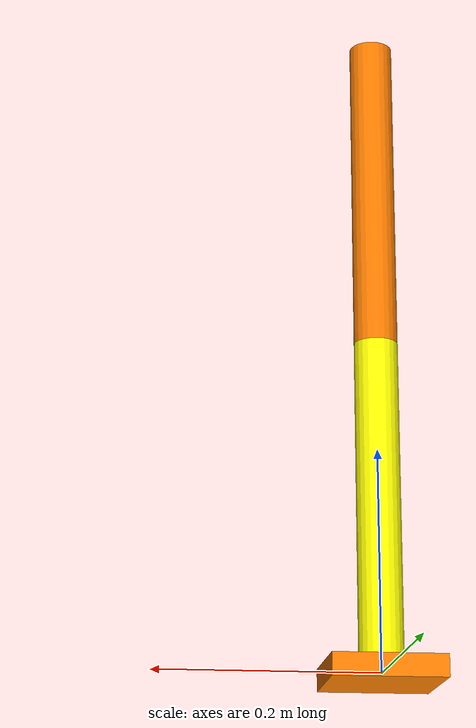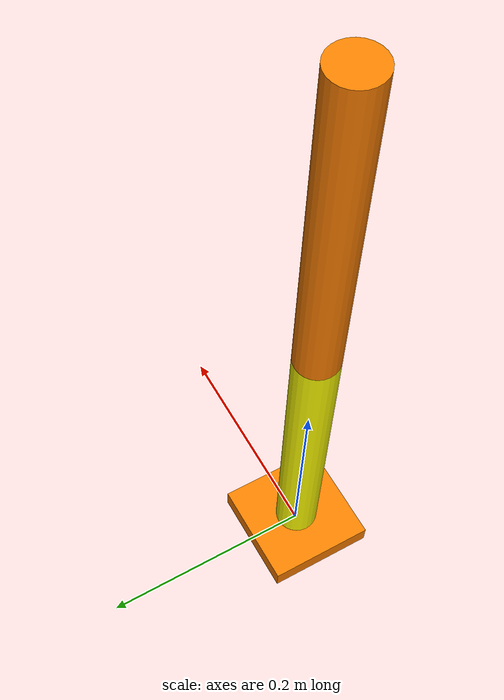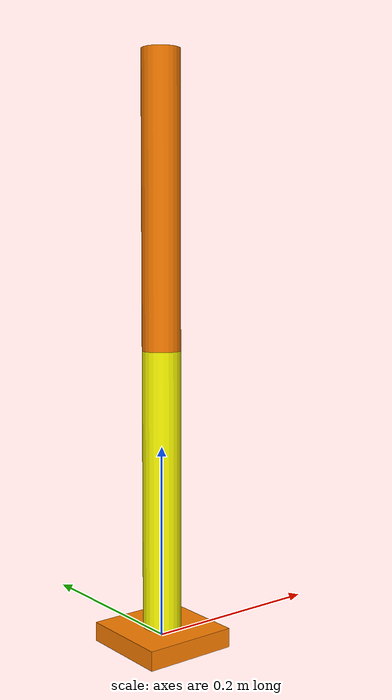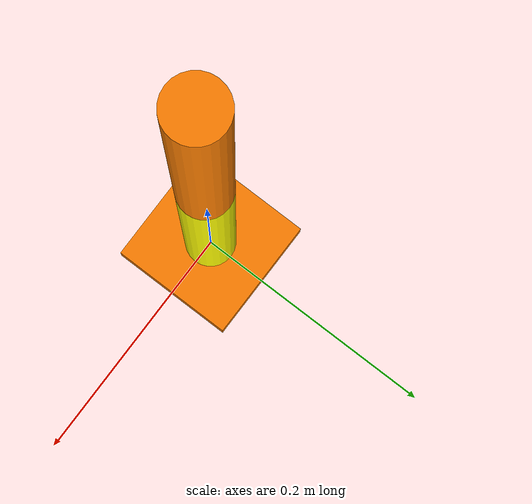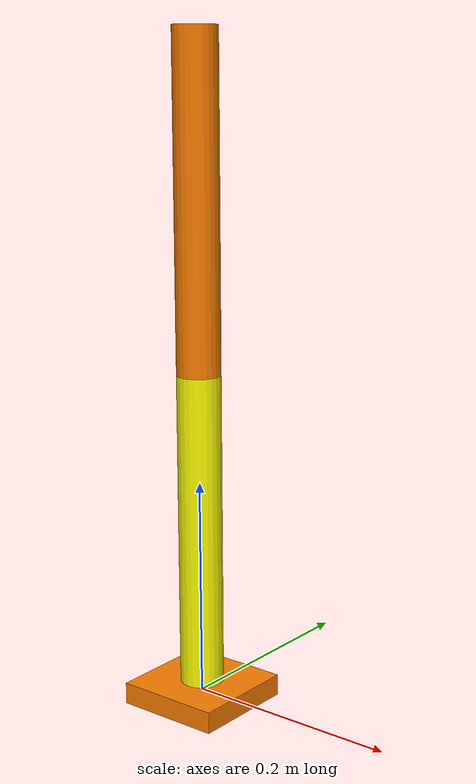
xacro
<?xml version="1.0"?>
<robot name="standalone_arm" xmlns:xacro="http://www.ros.org/wiki/xacro">

  <!-- Optional: shared materials + inertia helper macros -->
  <xacro:include filename="common_properties.xacro"/>

  <!-- The arm component -->
  <xacro:include filename="_arm_my_attempt.xacro"/>

  <!-- Root frame for standalone testing -->
  <link name="base_link"/>

  <!-- Instantiate the arm attached to base_link -->
  <xacro:arm parent_link="base_link" mount_xyz="0 0 0" mount_rpy="0 0 0"/>

</robot>

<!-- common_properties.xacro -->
<robot xmlns:xacro="http://www.ros.org/wiki/xacro">

    <material name="blue">
        <color rgba="0 0 0.5 1" />
    </material>

    <material name="grey">
        <color rgba="0.5 0.5 0.5 1" />
    </material>

    <material name="orange">
        <color rgba="1.0 0.5 0.0 1.0"/>
    </material>

    <material name="yellow">
        <color rgba="1.0 1.0 0.0 1.0"/>
    </material>

    <xacro:macro name="box_inertia" params="m x y z o_xyz o_rpy">
        <inertial>
            <mass value="${m}" />
            <origin xyz="${o_xyz}" rpy="${o_rpy}" />
            <inertia ixx="${(m/12) * (y*y + z*z)}" ixy="0" ixz="0"
                     iyy="${(m/12) * (x*x + z*z)}" iyz="0"
                     izz="${(m/12) * (x*x + y*y)}" />
        </inertial>
    </xacro:macro>

    <xacro:macro name="cylinder_inertia" params="m r l o_xyz o_rpy">
        <inertial>
            <mass value="${m}" />
            <origin xyz="${o_xyz}" rpy="${o_rpy}" />
            <inertia ixx="${(m/12) * (3*r*r + l*l)}" ixy="0" ixz="0"
                     iyy="${(m/12) * (3*r*r + l*l)}" iyz="0"
                     izz="${(m/2) * (r*r)}" />
        </inertial>
    </xacro:macro>

    <xacro:macro name="sphere_inertia" params="m r o_xyz o_rpy">
        <inertial>
            <mass value="${m}" />
            <origin xyz="${o_xyz}" rpy="${o_rpy}" />
            <inertia ixx="${(2/5) * m * r * r}" ixy="0" ixz="0"
                     iyy="${(2/5) * m * r * r}" iyz="0"
                     izz="${(2/5) * m * r * r}" />
        </inertial>
    </xacro:macro>

</robot>

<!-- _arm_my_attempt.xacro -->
<robot xmlns:xacro="http://www.ros.org/wiki/xacro">

    <xacro:macro name="arm" params="parent_link mount_xyz mount_rpy">

        <!-- Define links -->

        <link name="arm_base_link">
            <visual>
                <geometry>
                    <box size="0.1 0.1 0.02" />
                </geometry>
                <origin xyz="0 0 0" rpy="0 0 0" />
                <material name="orange" />
            </visual>
        </link>

        <link name="forearm_link">
            <visual>
                <geometry>
                    <cylinder radius="0.02" length="0.3" />
                </geometry>
                <origin xyz="0 0 0.15" rpy="0 0 0" />
                <material name="yellow" />
            </visual>
        </link>

        <link name="hand_link">
            <visual>
                <geometry>
                    <cylinder radius="0.02" length="0.3" />
                </geometry>
                <origin xyz="0 0 0.15" rpy="0 0 0" />
                <material name="orange" />
            </visual>
        </link>
        <!-- Define Joints -->

        <!-- Fix the arm to the root so TF exists even before /joint_states -->
        <joint name="base_to_arm" type="fixed">
            <parent link="base_link"/>
            <child link="arm_base_link"/>
            <origin xyz="0 0 0" rpy="0 0 0"/>
        </joint>

        <joint name="arm_forearm_joint" type="revolute">
            <parent link="arm_base_link" />
            <child link="forearm_link" />
            <origin xyz="0 0 0" />
            <axis xyz="0 1 0" />

        <limit lower="0.0" upper="${pi / 2.0}" effort="100" velocity="100"/>
        </joint>

        <joint name="forearm_hand_joint" type="revolute">
            <parent link="forearm_link" />
            <child link="hand_link" />
            <origin xyz="0 0 0.3" />
            <axis xyz="0 1 0" />

        <limit lower="0.0" upper="${pi / 2.0}" effort="100" velocity="100"/>
        </joint>

    </xacro:macro>

</robot>
